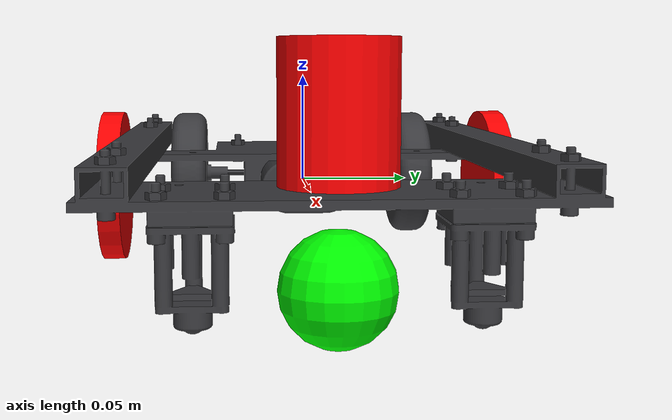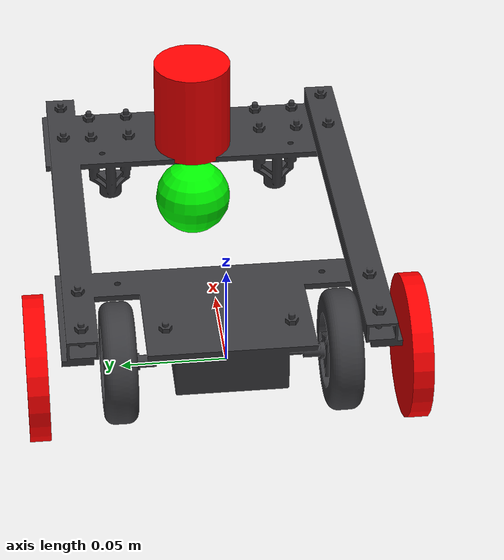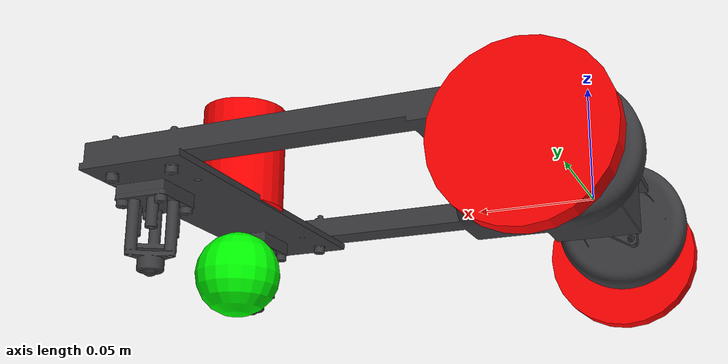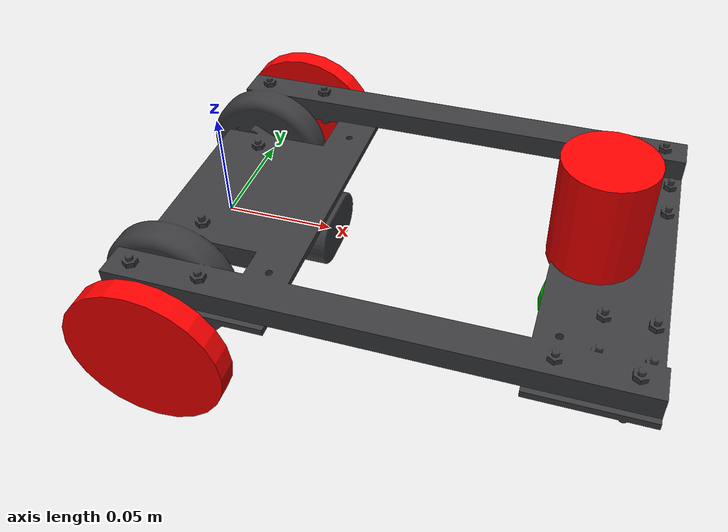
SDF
<?xml version="1.0" ?>
<sdf version="1.6">
    <model name="LidarRobo">
      <link name="base_footprint"/>
      <link name="chassis">
        <pose>-0.03 0.08 0.04 0 0 -1.5708</pose>
        <inertial>
          <!--恐らく、このposeの値が重心になる-->
          <pose>0.08 0.1 -0.1 0 0 0</pose>
          <mass>1.14395</mass>
          <inertia>
              <ixx>0.095329</ixx>
              <ixy>0</ixy>
              <ixz>0</ixz>
              <iyy>0.381317</iyy>
              <iyz>0</iyz>
              <izz>0.476646</izz>
          </inertia>
        </inertial>
        <collision name="collision">
          <pose>0 0 0 0 0 0</pose>
          <geometry>
            <mesh>
              <scale>1 1 1</scale>
              <uri>model://LidarRobo/meshes/2DRoboPrac.stl</uri>
            </mesh>
          </geometry>
          <surface>
            <friction>
              <ode>
                <mu>1.3</mu>
                <mu2>1.3</mu2>
              </ode>
            </friction>
          </surface>
        </collision>
        <visual name="visual">
          <pose>0 0 0 0 0 0</pose>
          <geometry>
            <mesh>
              <scale>1 1 1</scale>
              <uri>model://LidarRobo/meshes/2DRoboPrac.dae</uri>
            </mesh>
          </geometry>
        </visual>
      </link>

      <joint name="base_joint" type="fixed">
      <pose>0 0 0.01 0 0 0</pose>
      <parent>base_footprint</parent>
      <child>chassis</child>
    </joint>

      <!--lidarの取り付け-->
      <link name='lidar'>
        <pose relative_to="chassis">0.08 0.2 0 0 0 1.5707</pose>
        <sensor name='gpu_lidar' type='gpu_lidar'>
              <topic>/scan</topic>
              <!--fixed_frameを/tfと合わせるための設定、sensorが付いてるlinkの名前に合わせる-->
              <ignition_frame_id>lidar</ignition_frame_id>
              <update_rate>5</update_rate> <!--Hz-->
              <!--光線の設定-->
              <ray>
                <scan>
                  <horizontal>
                    <samples>360</samples>
                    <resolution>1</resolution>
                    <min_angle>0</min_angle>
                    <max_angle>6.28</max_angle>
                  </horizontal>
                </scan>
                <range>
                  <min>0.120000</min>
                  <max>20.0</max>
                  <resolution>0.015000</resolution>
                </range>
                <noise>
                  <type>gaussian</type>
                  <mean>0.0</mean>
                  <stddev>0.01</stddev>
                </noise>
              </ray>
              <always_on>1</always_on>
              <visualize>true</visualize>
          </sensor>
          <inertial>
              <inertia>
                <ixx>0.001</ixx>
                <ixy>0</ixy>
                <ixz>0</ixz>
                <iyy>0.001</iyy>
                <iyz>0</iyz>
                <izz>0.001</izz>
              </inertia>
              <mass>0.114</mass>
          </inertial>
          <visual name='visual'>
              <geometry>
                  <cylinder>
                      <radius>0.02</radius>
                      <length>0.05</length>
                  </cylinder>
              </geometry>
              <material>
                <ambient>1.0 0.0 0.0 1</ambient>
                <diffuse>1.0 0.0 0.0 1</diffuse>
                <specular>1.0 0.0 0.0 1</specular>
              </material>
          </visual>
      </link>
      <joint name="lidar_joint" type="fixed">
          <pose relative_to='lidar'/>
          <parent>chassis</parent>
          <child>lidar</child>
      </joint>

      <link name='left_wheel'>
        <pose relative_to="chassis">-0.01 0.035 -0.042 -1.5707 0 -1.5707</pose>
        <inertial>
            <inertia>
              <ixx>1.1175580e-05</ixx>
              <ixy>-4.2369783e-11</ixy>
              <ixz>-5.9381719e-09</ixz>
              <iyy>1.1192413e-05</iyy>
              <iyz>-1.4400107e-11</iyz>
              <izz>2.0712558e-05</izz>
            </inertia>
            <mass>0.1</mass>
        </inertial>
        <visual name='visual'>
            <geometry>
                <cylinder>
                    <radius>0.035</radius>
                    <length>0.01</length>
                </cylinder>
            </geometry>
            <material>
                <ambient>1.0 0.0 0.0 1</ambient>
                <diffuse>1.0 0.0 0.0 1</diffuse>
                <specular>1.0 0.0 0.0 1</specular>
            </material>
        </visual>
        <collision name='collision'>
            <geometry>
                <cylinder>
                    <radius>0.035</radius>
                    <length>0.01</length>
                </cylinder>
            </geometry>
            <surface>
            <!--摩擦などの設定-->
            <friction>
              <ode>
                <mu>100000.0</mu>
                <mu2>100000.0</mu2>
                <fdir1>0 0 0</fdir1>
                <slip1>0.0</slip1>
                <slip2>0.0</slip2>
              </ode>
            </friction>
            <contact>
              <ode>
                <soft_cfm>0</soft_cfm>
                <soft_erp>0.2</soft_erp>
                <kp>1e+5</kp>
                <kd>1</kd>
                <max_vel>0.01</max_vel>
                <min_depth>0.001</min_depth>
              </ode>
            </contact>
          </surface>
        </collision>
      </link>

      <joint name='left_wheel_joint' type='revolute'>
        <pose relative_to='left_wheel'/>
        <parent>chassis</parent>
        <child>left_wheel</child>
        <axis>
          <xyz expressed_in='__model__'>0 1 0</xyz> <!--can be defined as any frame or even arbitrary frames-->
          <limit>
            <lower>-1.79769e+308</lower>    <!--negative infinity-->
            <upper>1.79769e+308</upper>     <!--positive infinity-->
          </limit>
        </axis>
      </joint>

      <link name='right_wheel'>
        <pose relative_to="chassis">0.17 0.035 -0.042 -1.5707 0 -1.5707</pose>
        <inertial>
            <inertia>
              <ixx>1.1175580e-05</ixx>
              <ixy>-4.2369783e-11</ixy>
              <ixz>-5.9381719e-09</ixz>
              <iyy>1.1192413e-05</iyy>
              <iyz>-1.4400107e-11</iyz>
              <izz>2.0712558e-05</izz>
            </inertia>
            <mass>0.1</mass>
        </inertial>
        <visual name='visual'>
            <geometry>
                <cylinder>
                    <radius>0.035</radius>
                    <length>0.01</length>
                </cylinder>
            </geometry>
            <material>
                <ambient>1.0 0.0 0.0 1</ambient>
                <diffuse>1.0 0.0 0.0 1</diffuse>
                <specular>1.0 0.0 0.0 1</specular>
            </material>
        </visual>
        <collision name='collision'>
            <geometry>
                <cylinder>
                    <radius>0.035</radius>
                    <length>0.01</length>
                </cylinder>
            </geometry>
            <surface>
              <!-- This friction pamareter don't contain reliable data!! -->
              <friction>
                <ode>
                  <mu>100000.0</mu>
                  <mu2>100000.0</mu2>
                  <fdir1>0 0 0</fdir1>
                  <slip1>0.0</slip1>
                  <slip2>0.0</slip2>
                </ode>
              </friction>
              <contact>
                <ode>
                  <soft_cfm>0</soft_cfm>
                  <soft_erp>0.2</soft_erp>
                  <kp>1e+5</kp>
                  <kd>1</kd>
                  <max_vel>0.01</max_vel>
                  <min_depth>0.001</min_depth>
                </ode>
              </contact>
            </surface>
        </collision>
      </link>
      <joint name='right_wheel_joint' type='revolute'>
        <pose relative_to='right_wheel'/>
        <parent>chassis</parent>
        <child>right_wheel</child>
        <axis>
          <xyz expressed_in='__model__'>0 1 0</xyz>
          <limit>
            <lower>-1.79769e+308</lower>
            <upper>1.79769e+308</upper>
          </limit>
        </axis>
      </joint>

      <!--caster wheel-->
      <link name='caster'>
          <pose relative_to="chassis">0.08 0.2 -0.057 0 0 0</pose>
          <inertial>
              <mass>0.001</mass>
                <inertia>
                  <ixx>0.00001</ixx>
                  <ixy>0.000</ixy>
                  <ixz>0.000</ixz>
                  <iyy>0.00001</iyy>
                  <iyz>0.000</iyz>
                  <izz>0.00001</izz>
                </inertia>
          </inertial>
          <visual name='visual'>
              <geometry>
                  <sphere>
                      <radius>0.02</radius>
                  </sphere>
              </geometry>
              <material>
                  <ambient>0.0 1 0.0 1</ambient>
                  <diffuse>0.0 1 0.0 1</diffuse>
                  <specular>0.0 1 0.0 1</specular>
              </material>
          </visual>
          <collision name='collision'>
              <geometry>
                  <sphere>
                      <radius>0.02</radius>
                  </sphere>
              </geometry>
              <surface>
                <contact>
                  <ode>
                    <soft_cfm>0</soft_cfm>
                    <soft_erp>0.2</soft_erp>
                    <kp>1e+5</kp>
                    <kd>1</kd>
                    <max_vel>0.01</max_vel>
                    <min_depth>0.001</min_depth>
                  </ode>
                </contact>
              </surface>
          </collision>
      </link>

      <!--ballタイプのジョイントはrobot_state_publihserが変換しないので、rviz2側でtfを取得できない-->
      <joint name='caster_wheel' type='ball'>
          <pose relative_to='caster'/>
          <parent>chassis</parent>
          <child>caster</child>
      </joint>

      <!--差動二輪のためのプラグイン-->
      <plugin
          filename="libignition-gazebo-diff-drive-system.so"
          name="ignition::gazebo::systems::DiffDrive">
          <left_joint>left_wheel_joint</left_joint>
          <right_joint>right_wheel_joint</right_joint>
          <wheel_separation>1.2</wheel_separation>
          <wheel_radius>0.4</wheel_radius>
          <odom_publish_frequency>1</odom_publish_frequency>
          <!--速度司令を受け取るトピックを指定-->
          <topic>/cmd_vel</topic>
      </plugin>

      <!--↓ros2との連携に使うプラグインたち↓-->

      <plugin filename="libignition-gazebo-joint-state-publisher-system.so"
        name="ignition::gazebo::systems::JointStatePublisher">
        <topic>joint_states</topic>
      </plugin>

        <plugin
          filename="ignition-gazebo-pose-publisher-system"
          name="ignition::gazebo::systems::PosePublisher">
          <publish_link_pose>true</publish_link_pose>
          <use_pose_vector_msg>true</use_pose_vector_msg>
          <static_publisher>true</static_publisher>
          <static_update_frequency>1</static_update_frequency>
        </plugin>

        <plugin
          filename="ignition-gazebo-odometry-publisher-system"
          name="ignition::gazebo::systems::OdometryPublisher">
          <odom_publish_frequency>50</odom_publish_frequency>
          <odom_topic>/odom</odom_topic>
          <odom_frame>odom</odom_frame>
          <robot_base_frame>base_footprint</robot_base_frame>
          <tf_topic>/odom/tf</tf_topic>
        </plugin>
  </model>
</sdf>
